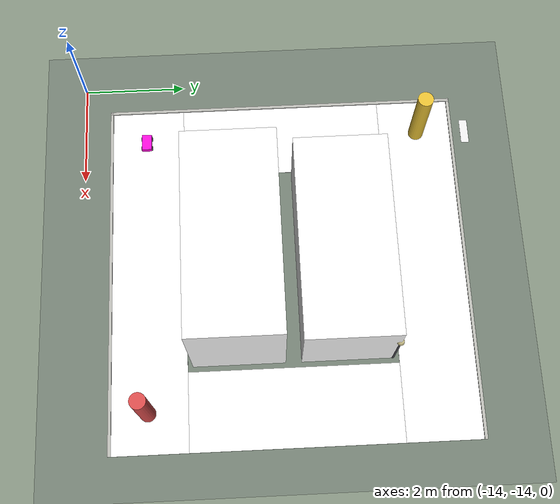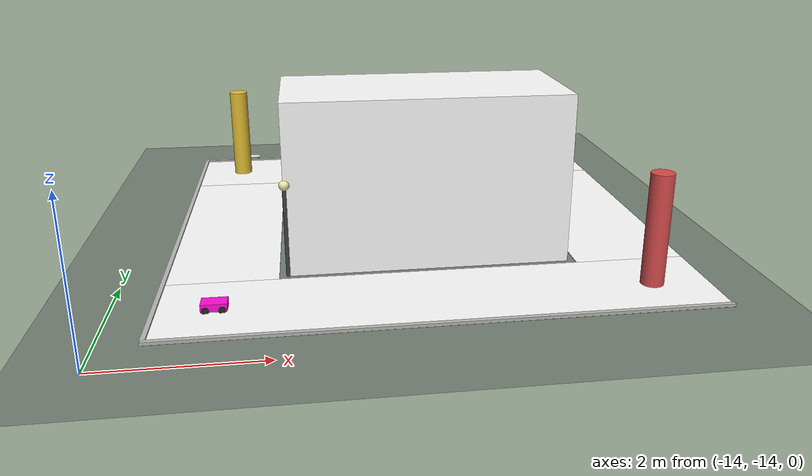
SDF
<sdf version="1.9">
 <world name="limo_city_blocks">
  <model name="ground_plane">
   <static>true</static>
   <link name="link">
    <collision name="collision">
     <geometry><plane><normal>0 0 1</normal><size>53 53</size></plane></geometry>
     <surface><friction><ode><mu>0.8</mu><mu2>0.8</mu2></ode></friction></surface>
    </collision>
    <visual name="visual">
     <geometry><plane><normal>0 0 1</normal><size>53 53</size></plane></geometry>
     <material><ambient>0.45 0.5 0.45 1</ambient><diffuse>0.45 0.5 0.45 1</diffuse></material>
    </visual>
   </link>
  </model>
  <model name="walk_s_0_0">
   <static>true</static>
   <pose>-10.000 -12.750 0.008 0 0 0.000</pose>
   <link name="link">
    <visual name="visual">
     <geometry><box><size>7.000 1.500 0.012</size></box></geometry>
     <material>
      <ambient>1 1 1 1</ambient>
      <diffuse>1 1 1 1</diffuse>
      <pbr>
       <metal>
        <albedo_map>model://city_textures/paving.png</albedo_map>
        <roughness>0.85</roughness>
        <metalness>0.0</metalness>
       </metal>
      </pbr>
     </material>
    </visual>
   </link>
  </model>
  <model name="walk_n_0_0">
   <static>true</static>
   <pose>-10.000 -7.250 0.008 0 0 0.000</pose>
   <link name="link">
    <visual name="visual">
     <geometry><box><size>7.000 1.500 0.012</size></box></geometry>
     <material>
      <ambient>1 1 1 1</ambient>
      <diffuse>1 1 1 1</diffuse>
      <pbr>
       <metal>
        <albedo_map>model://city_textures/paving.png</albedo_map>
        <roughness>0.85</roughness>
        <metalness>0.0</metalness>
       </metal>
      </pbr>
     </material>
    </visual>
   </link>
  </model>
  <model name="walk_w_0_0">
   <static>true</static>
   <pose>-12.750 -10.000 0.008 0 0 0.000</pose>
   <link name="link">
    <visual name="visual">
     <geometry><box><size>1.500 4.000 0.012</size></box></geometry>
     <material>
      <ambient>1 1 1 1</ambient>
      <diffuse>1 1 1 1</diffuse>
      <pbr>
       <metal>
        <albedo_map>model://city_textures/paving.png</albedo_map>
        <roughness>0.85</roughness>
        <metalness>0.0</metalness>
       </metal>
      </pbr>
     </material>
    </visual>
   </link>
  </model>
  <model name="walk_e_0_0">
   <static>true</static>
   <pose>-7.250 -10.000 0.008 0 0 0.000</pose>
   <link name="link">
    <visual name="visual">
     <geometry><box><size>1.500 4.000 0.012</size></box></geometry>
     <material>
      <ambient>1 1 1 1</ambient>
      <diffuse>1 1 1 1</diffuse>
      <pbr>
       <metal>
        <albedo_map>model://city_textures/paving.png</albedo_map>
        <roughness>0.85</roughness>
        <metalness>0.0</metalness>
       </metal>
      </pbr>
     </material>
    </visual>
   </link>
  </model>
  <model name="curb_s_0_0">
   <static>true</static>
   <pose>-10.000 -13.470 0.020 0 0 0.000</pose>
   <link name="link">
    <visual name="visual">
     <geometry><box><size>7.000 0.060 0.040</size></box></geometry>
     <material><ambient>0.72 0.72 0.7 1</ambient><diffuse>0.72 0.72 0.7 1</diffuse></material>
    </visual>
   </link>
  </model>
  <model name="curb_n_0_0">
   <static>true</static>
   <pose>-10.000 -6.530 0.020 0 0 0.000</pose>
   <link name="link">
    <visual name="visual">
     <geometry><box><size>7.000 0.060 0.040</size></box></geometry>
     <material><ambient>0.72 0.72 0.7 1</ambient><diffuse>0.72 0.72 0.7 1</diffuse></material>
    </visual>
   </link>
  </model>
  <model name="curb_w_0_0">
   <static>true</static>
   <pose>-13.470 -10.000 0.020 0 0 0.000</pose>
   <link name="link">
    <visual name="visual">
     <geometry><box><size>0.060 7.000 0.040</size></box></geometry>
     <material><ambient>0.72 0.72 0.7 1</ambient><diffuse>0.72 0.72 0.7 1</diffuse></material>
    </visual>
   </link>
  </model>
  <model name="lamp_0">
   <static>true</static>
   <pose>-11.880 -11.880 0 0 0 0</pose>
   <link name="link">
    <collision name="collision">
     <pose>0 0 0.6 0 0 0</pose>
     <geometry><cylinder><radius>0.03</radius><length>1.2</length></cylinder></geometry>
    </collision>
    <visual name="pole">
     <pose>0 0 0.6 0 0 0</pose>
     <geometry><cylinder><radius>0.03</radius><length>1.2</length></cylinder></geometry>
     <material><ambient>0.2 0.2 0.22 1</ambient><diffuse>0.25 0.25 0.28 1</diffuse></material>
    </visual>
    <visual name="head">
     <pose>0 0 1.25 0 0 0</pose>
     <geometry><sphere><radius>0.07</radius></sphere></geometry>
     <material>
      <ambient>0.9 0.85 0.6 1</ambient>
      <diffuse>0.95 0.9 0.65 1</diffuse>
      <emissive>0.5 0.45 0.25 1</emissive>
     </material>
    </visual>
   </link>
  </model>
  <model name="lamp_1">
   <static>true</static>
   <pose>-8.120 -8.120 0 0 0 0</pose>
   <link name="link">
    <collision name="collision">
     <pose>0 0 0.6 0 0 0</pose>
     <geometry><cylinder><radius>0.03</radius><length>1.2</length></cylinder></geometry>
    </collision>
    <visual name="pole">
     <pose>0 0 0.6 0 0 0</pose>
     <geometry><cylinder><radius>0.03</radius><length>1.2</length></cylinder></geometry>
     <material><ambient>0.2 0.2 0.22 1</ambient><diffuse>0.25 0.25 0.28 1</diffuse></material>
    </visual>
    <visual name="head">
     <pose>0 0 1.25 0 0 0</pose>
     <geometry><sphere><radius>0.07</radius></sphere></geometry>
     <material>
      <ambient>0.9 0.85 0.6 1</ambient>
      <diffuse>0.95 0.9 0.65 1</diffuse>
      <emissive>0.5 0.45 0.25 1</emissive>
     </material>
    </visual>
   </link>
  </model>
  <model name="zebra_12_0">
   <static>true</static>
   <pose>-12.750 -6.250 0.013 0 0 0.000</pose>
   <link name="link">
    <visual name="visual">
     <geometry><box><size>0.500 0.160 0.002</size></box></geometry>
     <material><ambient>0.92 0.92 0.92 1</ambient><diffuse>0.92 0.92 0.92 1</diffuse></material>
    </visual>
   </link>
  </model>
  <model name="building_0">
   <static>true</static>
   <pose>-10.000 -11.025 1.158 0 0 0.000</pose>
   <link name="link">
    <collision name="collision"><geometry><box><size>3.800 1.750 2.317</size></box></geometry></collision>
    <visual name="visual">
     <geometry><box><size>3.800 1.750 2.317</size></box></geometry>
     <material>
      <ambient>1 1 1 1</ambient>
      <diffuse>1 1 1 1</diffuse>
      <pbr>
       <metal>
        <albedo_map>model://city_textures/facade_3.png</albedo_map>
        <roughness>0.85</roughness>
        <metalness>0.0</metalness>
       </metal>
      </pbr>
     </material>
    </visual>
   </link>
  </model>
  <model name="building_1">
   <static>true</static>
   <pose>-10.000 -8.975 0.921 0 0 0.000</pose>
   <link name="link">
    <collision name="collision"><geometry><box><size>3.800 1.750 1.841</size></box></geometry></collision>
    <visual name="visual">
     <geometry><box><size>3.800 1.750 1.841</size></box></geometry>
     <material>
      <ambient>1 1 1 1</ambient>
      <diffuse>1 1 1 1</diffuse>
      <pbr>
       <metal>
        <albedo_map>model://city_textures/facade_0.png</albedo_map>
        <roughness>0.85</roughness>
        <metalness>0.0</metalness>
       </metal>
      </pbr>
     </material>
    </visual>
   </link>
  </model>
  <model name="ped_0_cross">
   <pose>-12.750 -7.250 0 0 0 0</pose>
   <link name="body">
    <kinematic>true</kinematic>
    <collision name="collision">
     <pose>0 0 0.75 0 0 0</pose>
     <geometry><cylinder><radius>0.15</radius><length>1.5</length></cylinder></geometry>
    </collision>
    <visual name="visual">
     <pose>0 0 0.75 0 0 0</pose>
     <geometry><cylinder><radius>0.15</radius><length>1.5</length></cylinder></geometry>
     <material><ambient>0.9 0.75 0.2 1</ambient><diffuse>0.9 0.75 0.2 1</diffuse></material>
    </visual>
   </link>
   <plugin filename="gz-sim-velocity-control-system" name="gz::sim::systems::VelocityControl"/>
   <plugin filename="gz-sim-pose-publisher-system" name="gz::sim::systems::PosePublisher">
    <publish_model_pose>true</publish_model_pose>
    <publish_link_pose>false</publish_link_pose>
    <publish_collision_pose>false</publish_collision_pose>
    <publish_visual_pose>false</publish_visual_pose>
    <publish_sensor_pose>false</publish_sensor_pose>
    <use_pose_vector_msg>false</use_pose_vector_msg>
    <update_frequency>10</update_frequency>
   </plugin>
  </model>
  <model name="ped_2_cross">
   <pose>-7.250 -12.750 0 0 0 0</pose>
   <link name="body">
    <kinematic>true</kinematic>
    <collision name="collision">
     <pose>0 0 0.75 0 0 0</pose>
     <geometry><cylinder><radius>0.15</radius><length>1.5</length></cylinder></geometry>
    </collision>
    <visual name="visual">
     <pose>0 0 0.75 0 0 0</pose>
     <geometry><cylinder><radius>0.15</radius><length>1.5</length></cylinder></geometry>
     <material><ambient>0.85 0.3 0.3 1</ambient><diffuse>0.85 0.3 0.3 1</diffuse></material>
    </visual>
   </link>
   <plugin filename="gz-sim-velocity-control-system" name="gz::sim::systems::VelocityControl"/>
   <plugin filename="gz-sim-pose-publisher-system" name="gz::sim::systems::PosePublisher">
    <publish_model_pose>true</publish_model_pose>
    <publish_link_pose>false</publish_link_pose>
    <publish_collision_pose>false</publish_collision_pose>
    <publish_visual_pose>false</publish_visual_pose>
    <publish_sensor_pose>false</publish_sensor_pose>
    <use_pose_vector_msg>false</use_pose_vector_msg>
    <update_frequency>10</update_frequency>
   </plugin>
  </model>
  <include>
   <uri>model://limo_pro</uri>
   <name>limo</name>
   <pose>-12.750 -12.750 0.075 0 0 0</pose>
   <plugin filename="gz-sim-pose-publisher-system" name="gz::sim::systems::PosePublisher">
    <publish_model_pose>true</publish_model_pose>
    <publish_link_pose>false</publish_link_pose>
    <publish_collision_pose>false</publish_collision_pose>
    <publish_visual_pose>false</publish_visual_pose>
    <publish_sensor_pose>false</publish_sensor_pose>
    <use_pose_vector_msg>false</use_pose_vector_msg>
    <update_frequency>20</update_frequency>
   </plugin>
  </include>
 </world>
</sdf>
